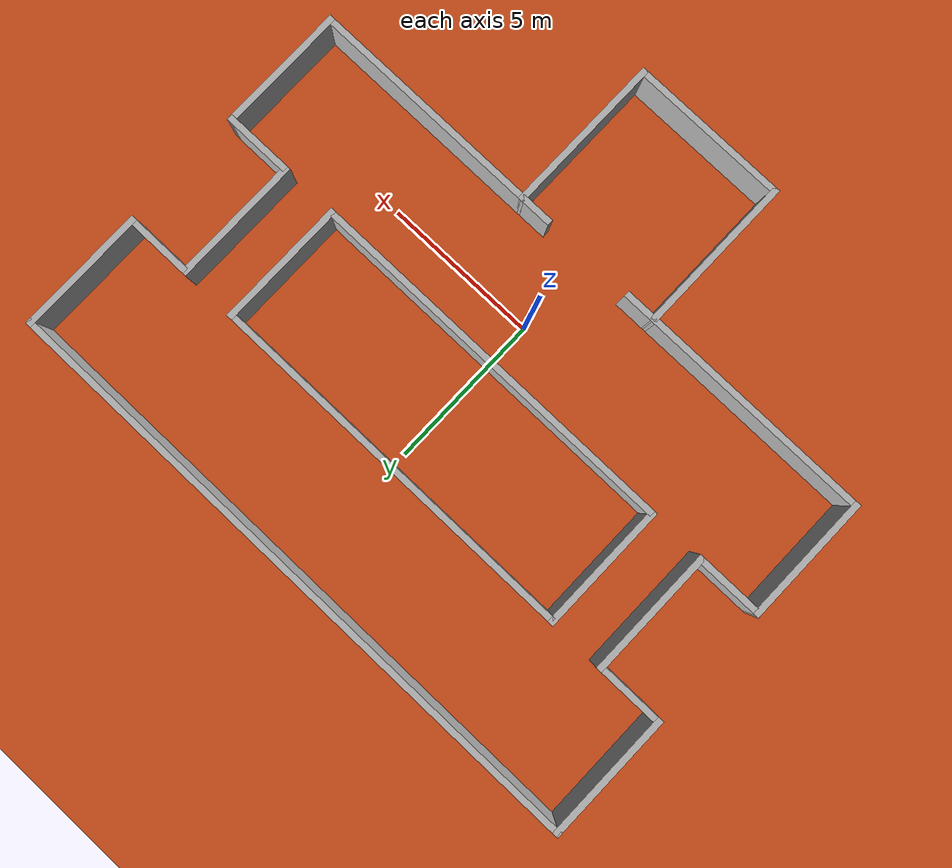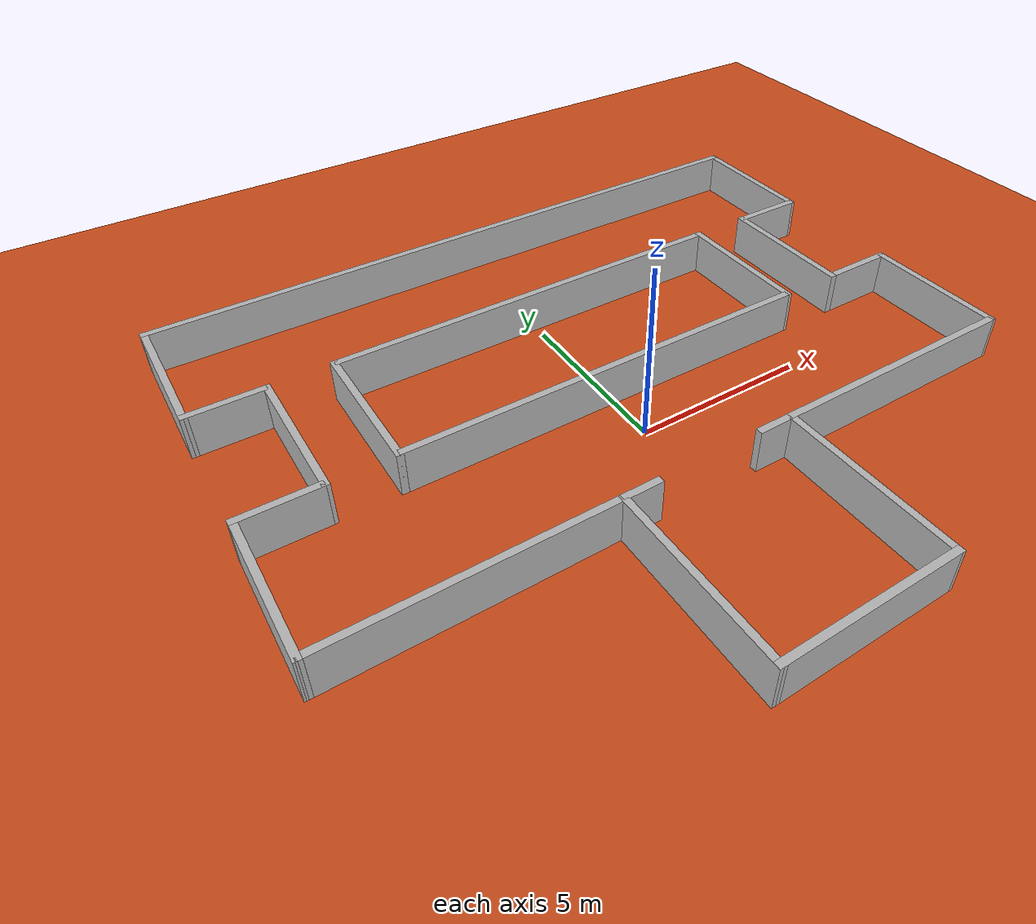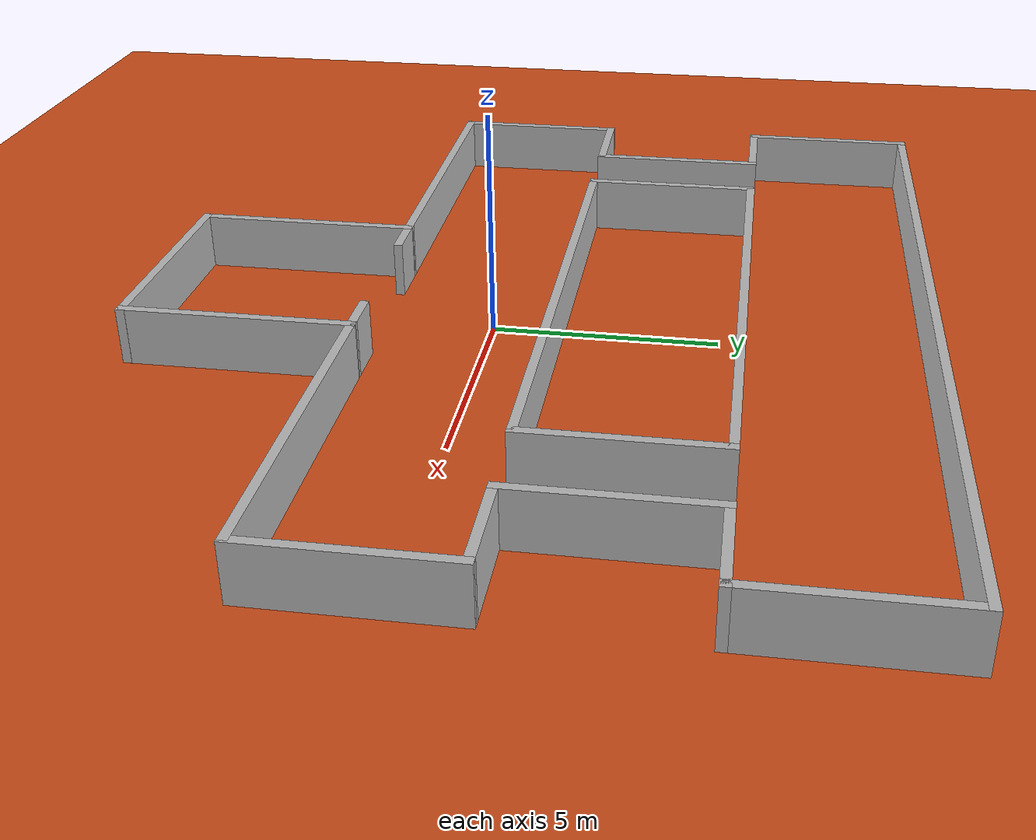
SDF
<?xml version="1.0" ?>
<sdf version="1.6">
  <world name="mars_station_watertight">

    <physics name="1ms" type="ignored">
      <max_step_size>0.001</max_step_size>
      <real_time_factor>1.0</real_time_factor>
    </physics>

    <light type="directional" name="sun">
      <cast_shadows>true</cast_shadows>
      <pose>0 0 10 0 0 0</pose>
      <diffuse>0.9 0.4 0.2 1</diffuse>
      <specular>0.2 0.1 0.1 1</specular>
      <direction>-1 -1 -1</direction>
    </light>

    <model name="ground_plane">
      <static>true</static>
      <link name="link">
        <collision name="collision"><geometry><plane><normal>0 0 1</normal><size>100 100</size></plane></geometry></collision>
        <visual name="visual"><geometry><plane><normal>0 0 1</normal><size>100 100</size></plane></geometry>
          <material><ambient>0.4 0.2 0.1 1</ambient><diffuse>0.8 0.3 0.1 1</diffuse></material>
        </visual>
      </link>
    </model>

    <model name="spawn_room">
      <static>true</static>
      <pose>0 -5 0 0 0 0</pose>
      <model name="wall_s"><pose>0 -2.5 0.5 0 0 0</pose><link name="l"><collision name="c"><geometry><box><size>5.2 0.2 1.5</size></box></geometry></collision><visual name="v"><geometry><box><size>5.2 0.2 1.5</size></box></geometry></visual></link></model>
      <model name="wall_e"><pose>2.5 0 0.5 0 0 1.57</pose><link name="l"><collision name="c"><geometry><box><size>5.2 0.2 1.5</size></box></geometry></collision><visual name="v"><geometry><box><size>5.2 0.2 1.5</size></box></geometry></visual></link></model>
      <model name="wall_w"><pose>-2.5 0 0.5 0 0 1.57</pose><link name="l"><collision name="c"><geometry><box><size>5.2 0.2 1.5</size></box></geometry></collision><visual name="v"><geometry><box><size>5.2 0.2 1.5</size></box></geometry></visual></link></model>
      <model name="exit_l"><pose>-2 2.5 0.5 0 0 0</pose><link name="l"><collision name="c"><geometry><box><size>1.1 0.2 1.5</size></box></geometry></collision><visual name="v"><geometry><box><size>1.1 0.2 1.5</size></box></geometry></visual></link></model>
      <model name="exit_r"><pose>2 2.5 0.5 0 0 0</pose><link name="l"><collision name="c"><geometry><box><size>1.1 0.2 1.5</size></box></geometry></collision><visual name="v"><geometry><box><size>1.1 0.2 1.5</size></box></geometry></visual></link></model>
    </model>

    <model name="hallway_1">
      <static>true</static>
      <pose>0 -0.5 0 0 0 0</pose>
      <model name="s_wall_l"><pose>-6.25 -2 0.5 0 0 0</pose><link name="l"><collision name="c"><geometry><box><size>7.6 0.2 1.5</size></box></geometry></collision><visual name="v"><geometry><box><size>7.6 0.2 1.5</size></box></geometry></visual></link></model>
      <model name="s_wall_r"><pose>6.25 -2 0.5 0 0 0</pose><link name="l"><collision name="c"><geometry><box><size>7.6 0.2 1.5</size></box></geometry></collision><visual name="v"><geometry><box><size>7.6 0.2 1.5</size></box></geometry></visual></link></model>
      <model name="n_wall_l"><pose>-9 2 0.5 0 0 0</pose><link name="l"><collision name="c"><geometry><box><size>2.2 0.2 1.5</size></box></geometry></collision><visual name="v"><geometry><box><size>2.2 0.2 1.5</size></box></geometry></visual></link></model>
      <model name="n_wall_m"><pose>0 2 0.5 0 0 0</pose><link name="l"><collision name="c"><geometry><box><size>12.2 0.2 1.5</size></box></geometry></collision><visual name="v"><geometry><box><size>12.2 0.2 1.5</size></box></geometry></visual></link></model>
      <model name="n_wall_r"><pose>9 2 0.5 0 0 0</pose><link name="l"><collision name="c"><geometry><box><size>2.2 0.2 1.5</size></box></geometry></collision><visual name="v"><geometry><box><size>2.2 0.2 1.5</size></box></geometry></visual></link></model>
      <model name="cap_w"><pose>-10 0 0.5 0 0 1.57</pose><link name="l"><collision name="c"><geometry><box><size>4.2 0.2 1.5</size></box></geometry></collision><visual name="v"><geometry><box><size>4.2 0.2 1.5</size></box></geometry></visual></link></model>
      <model name="cap_e"><pose>10 0 0.5 0 0 1.57</pose><link name="l"><collision name="c"><geometry><box><size>4.2 0.2 1.5</size></box></geometry></collision><visual name="v"><geometry><box><size>4.2 0.2 1.5</size></box></geometry></visual></link></model>
    </model>

    <model name="connectors">
      <static>true</static>
      <pose>0 3.5 0 0 0 0</pose>
      <model name="cw_1"><pose>-7.9 0 0.5 0 0 1.57</pose><link name="l"><collision name="c"><geometry><box><size>4.2 0.2 1.5</size></box></geometry></collision><visual name="v"><geometry><box><size>4.2 0.2 1.5</size></box></geometry></visual></link></model>
      <model name="cw_2"><pose>-6.1 0 0.5 0 0 1.57</pose><link name="l"><collision name="c"><geometry><box><size>4.2 0.2 1.5</size></box></geometry></collision><visual name="v"><geometry><box><size>4.2 0.2 1.5</size></box></geometry></visual></link></model>
      <model name="ce_1"><pose>6.1 0 0.5 0 0 1.57</pose><link name="l"><collision name="c"><geometry><box><size>4.2 0.2 1.5</size></box></geometry></collision><visual name="v"><geometry><box><size>4.2 0.2 1.5</size></box></geometry></visual></link></model>
      <model name="ce_2"><pose>7.9 0 0.5 0 0 1.57</pose><link name="l"><collision name="c"><geometry><box><size>4.2 0.2 1.5</size></box></geometry></collision><visual name="v"><geometry><box><size>4.2 0.2 1.5</size></box></geometry></visual></link></model>
    </model>

    <model name="hallway_2">
      <static>true</static>
      <pose>0 7.5 0 0 0 0</pose>
      <model name="n_wall"><pose>0 2 0.5 0 0 0</pose><link name="l"><collision name="c"><geometry><box><size>20.2 0.2 1.5</size></box></geometry></collision><visual name="v"><geometry><box><size>20.2 0.2 1.5</size></box></geometry></visual></link></model>
      <model name="s_wall_l"><pose>-9 -2 0.5 0 0 0</pose><link name="l"><collision name="c"><geometry><box><size>2.2 0.2 1.5</size></box></geometry></collision><visual name="v"><geometry><box><size>2.2 0.2 1.5</size></box></geometry></visual></link></model>
      <model name="s_wall_m"><pose>0 -2 0.5 0 0 0</pose><link name="l"><collision name="c"><geometry><box><size>12.2 0.2 1.5</size></box></geometry></collision><visual name="v"><geometry><box><size>12.2 0.2 1.5</size></box></geometry></visual></link></model>
      <model name="s_wall_r"><pose>9 -2 0.5 0 0 0</pose><link name="l"><collision name="c"><geometry><box><size>2.2 0.2 1.5</size></box></geometry></collision><visual name="v"><geometry><box><size>2.2 0.2 1.5</size></box></geometry></visual></link></model>
      <model name="cap_w"><pose>-10 0 0.5 0 0 1.57</pose><link name="l"><collision name="c"><geometry><box><size>4.2 0.2 1.5</size></box></geometry></collision><visual name="v"><geometry><box><size>4.2 0.2 1.5</size></box></geometry></visual></link></model>
      <model name="cap_e"><pose>10 0 0.5 0 0 1.57</pose><link name="l"><collision name="c"><geometry><box><size>4.2 0.2 1.5</size></box></geometry></collision><visual name="v"><geometry><box><size>4.2 0.2 1.5</size></box></geometry></visual></link></model>
    </model>

    <plugin filename="gz-sim-physics-system" name="gz::sim::systems::Physics"/>
    <plugin filename="gz-sim-user-commands-system" name="gz::sim::systems::UserCommands"/>
    <plugin filename="gz-sim-scene-broadcaster-system" name="gz::sim::systems::SceneBroadcaster"/>
    <plugin filename="gz-sim-sensors-system" name="gz::sim::systems::Sensors"><render_engine>ogre2</render_engine></plugin>
  </world>
</sdf>
